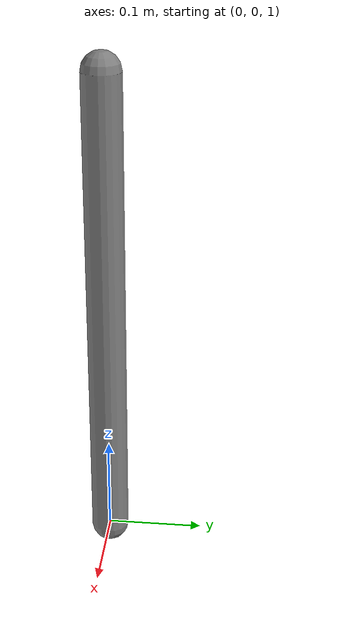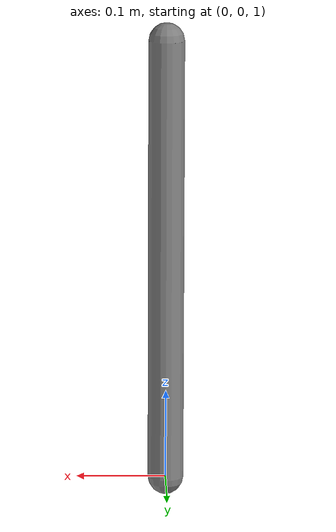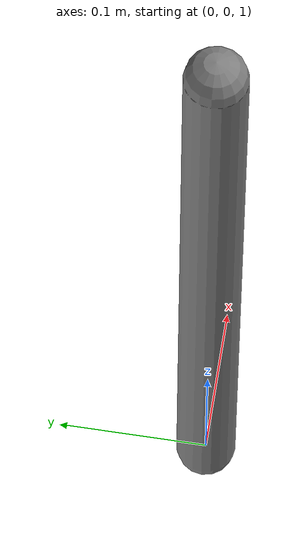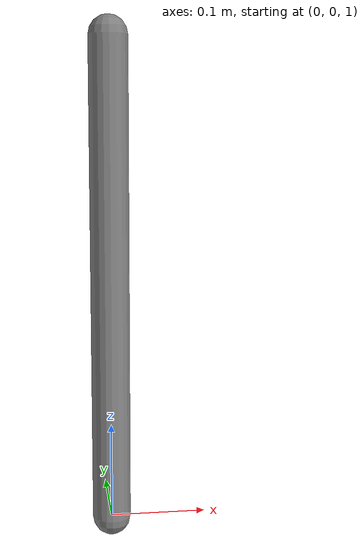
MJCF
<mujoco model="hinge-interior">
  <compiler angle="degree"/>
  <option gravity="0 0 -9.81" timestep="0.002"/>
  <worldbody>
    <body name="pivot" pos="0 0 1.5">
      <body name="rod" pos="0 0 0">
        <joint name="hinge" type="hinge" axis="0 1 0"
               limited="true" range="-45 45" ref="0" damping="5.0"/>
        <geom type="capsule" fromto="0 0 0 0 0 -0.5" size="0.02" mass="1.0"/>
      </body>
    </body>
  </worldbody>
  <sensor>
    <jointlimitfrc name="hinge_lf" joint="hinge"/>
  </sensor>
</mujoco>
